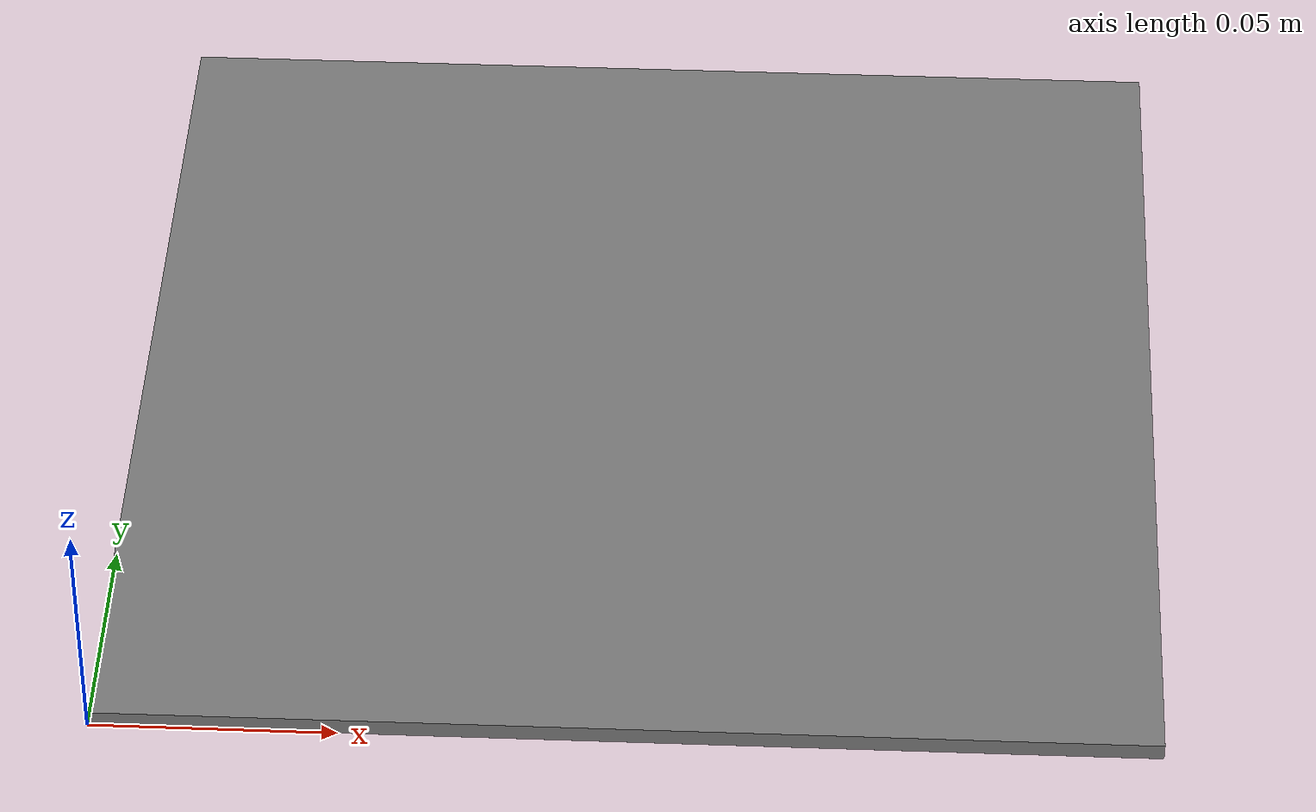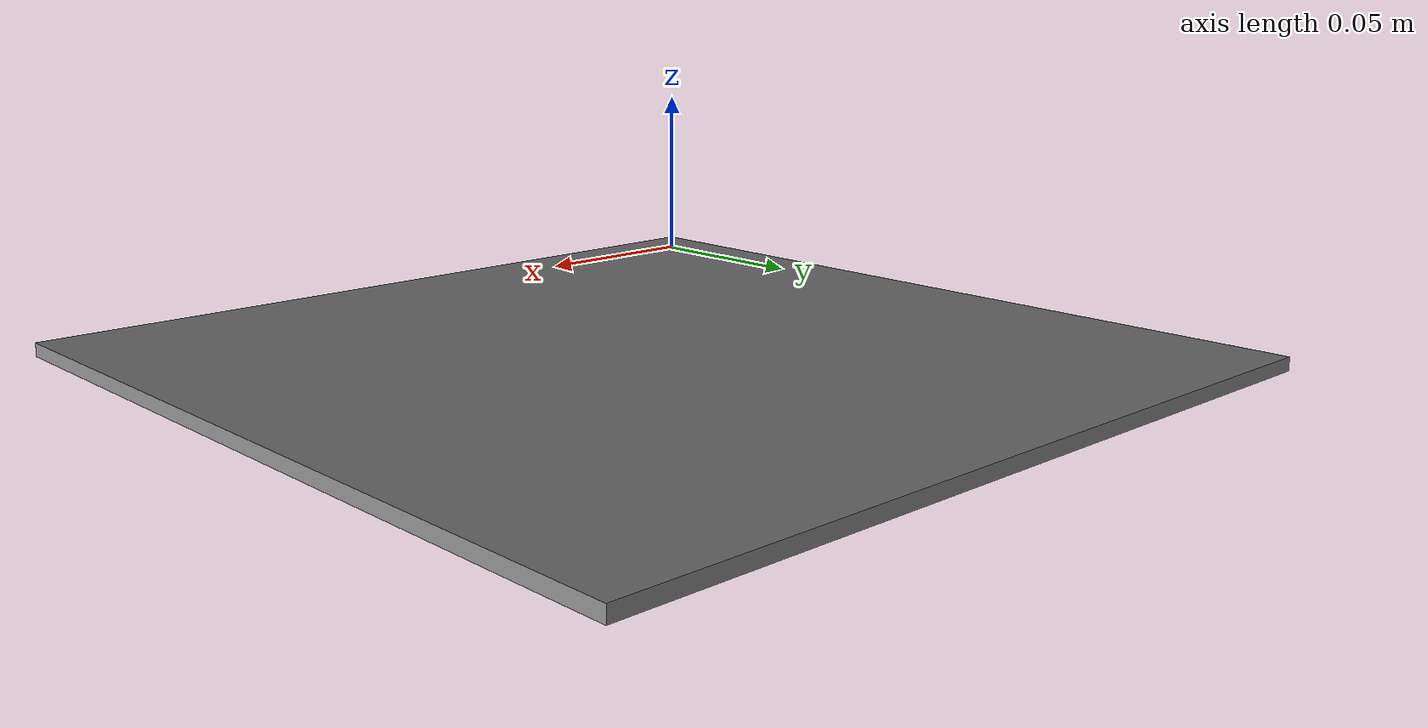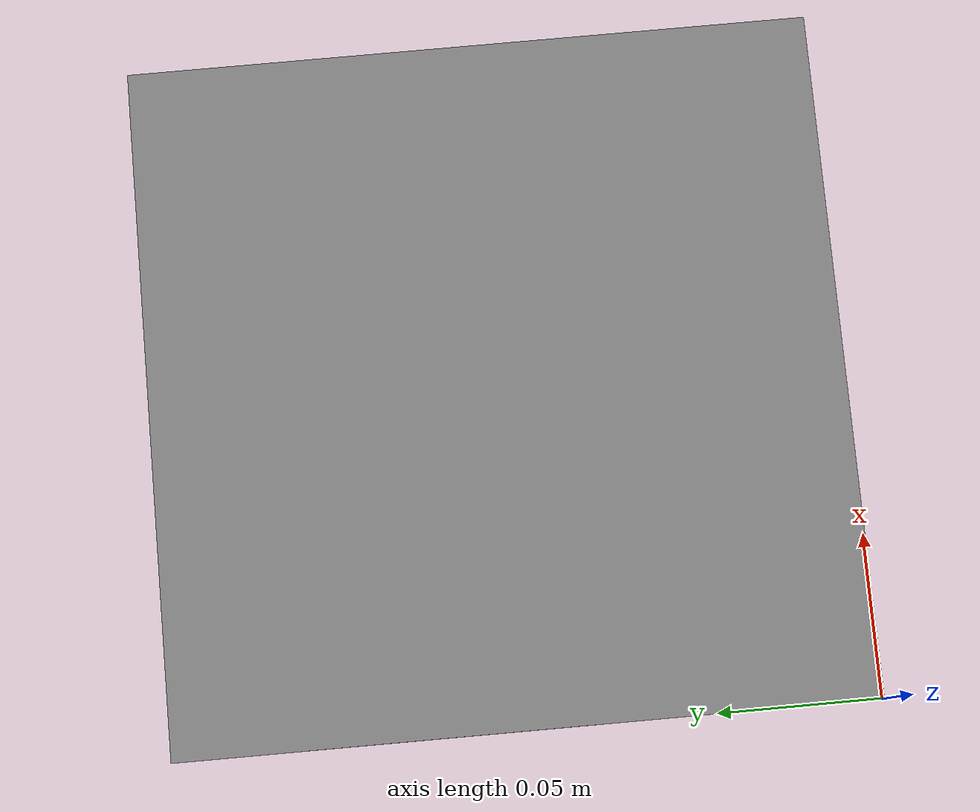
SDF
<?xml version="1.0" ?>
<sdf version="1.3">
  <model name="plate">
    <link name="link">
      <inertial>
        <mass>0.1</mass>
      </inertial>
      <collision name="collision">
        <geometry>
          <cylinder>
            <radius>0.098</radius>
            <length>0.035</length>
          </cylinder>
        </geometry>
      </collision>
      <visual name="visual">
        <geometry>
          <mesh>
            <uri>model://plate/meshes/plate.dae</uri>
          </mesh>
        </geometry>
      </visual>
    </link>
  </model>
</sdf>
